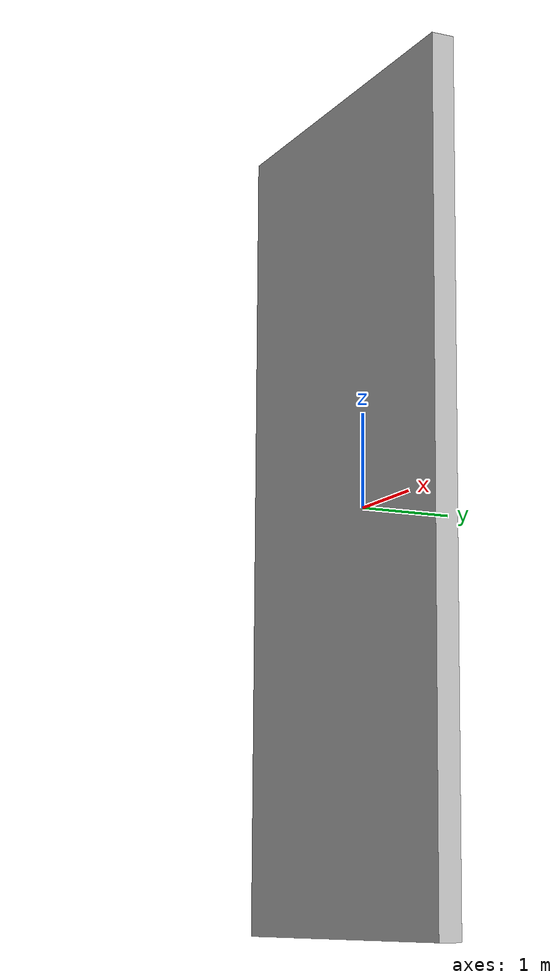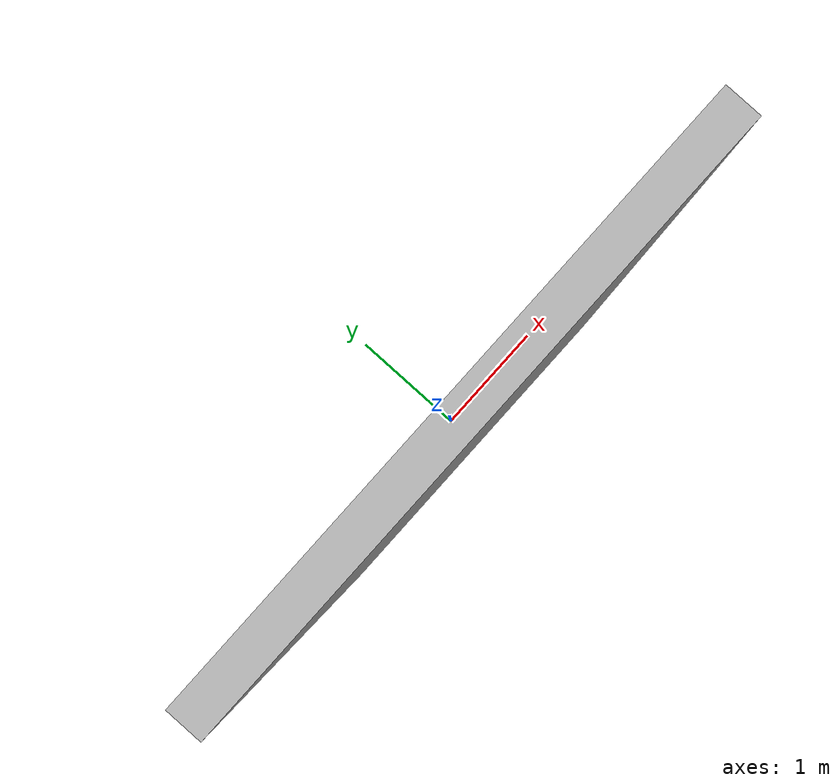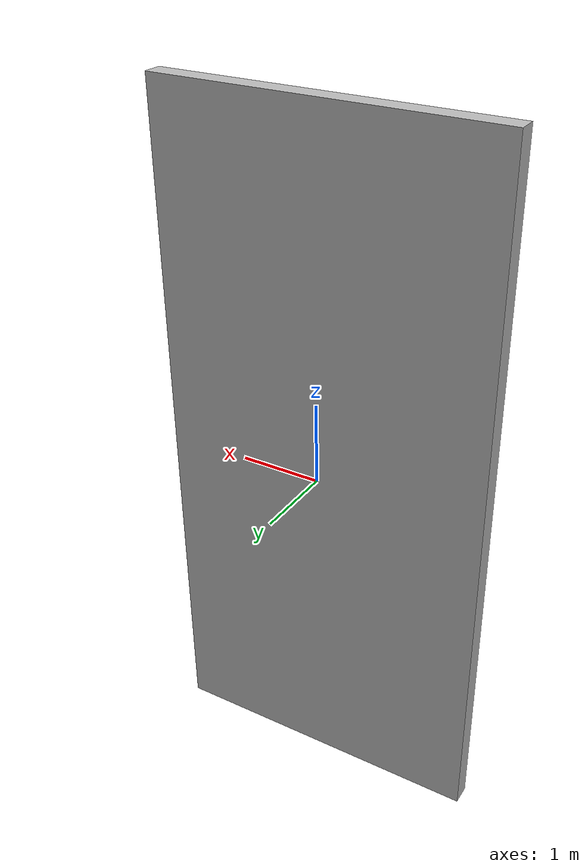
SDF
<?xml version='1.0' ?>
<sdf version="1.6">
    <model name="RoadShort">
        <static>false</static>
        <link name="link">
            <collision name="collision">
                <pose>0 0 0 1.5708 0 0</pose>
                <geometry>
                    <mesh>
                        <uri>meshes/road.dae</uri>
                    </mesh>
                </geometry>
            </collision>
            <visual name="visual">
                <pose>0 0 0 1.5708 0 0</pose>
                <geometry>
                    <mesh>
                        <uri>meshes/road.dae</uri>
                    </mesh>
                </geometry>
            </visual>
        </link>
    </model>
</sdf>
